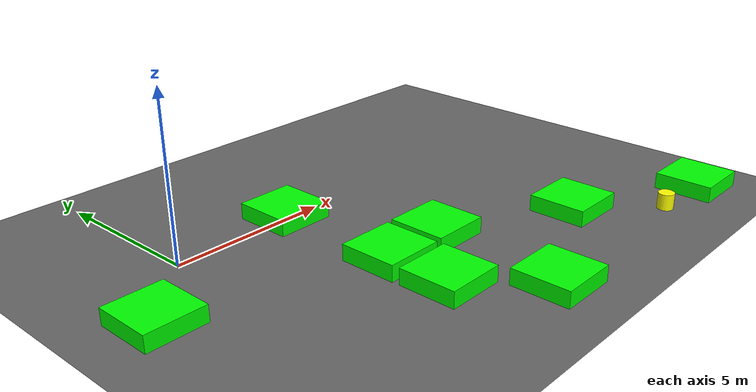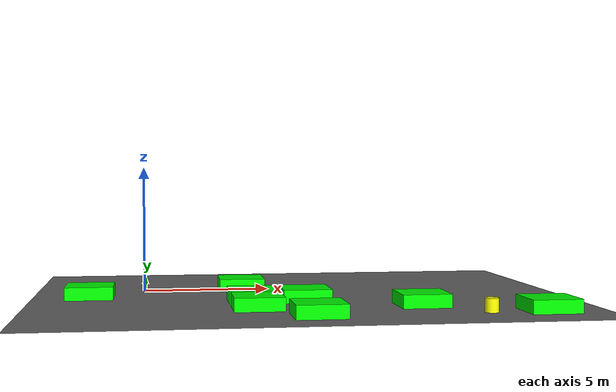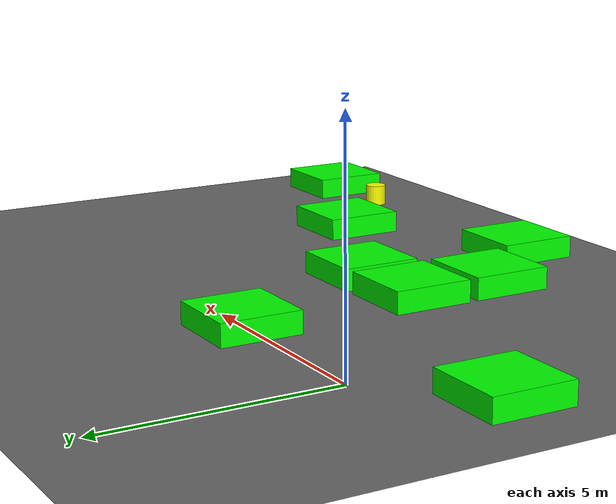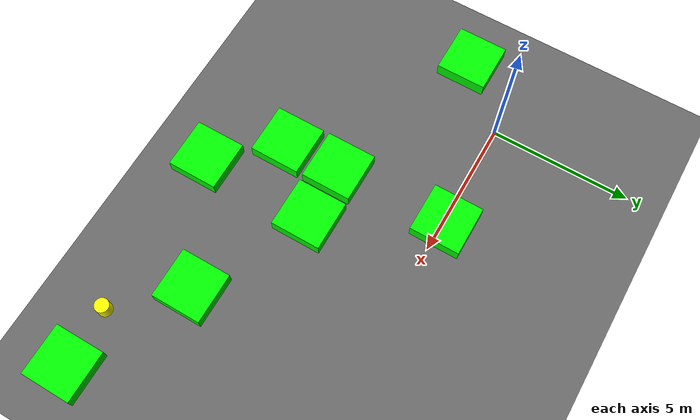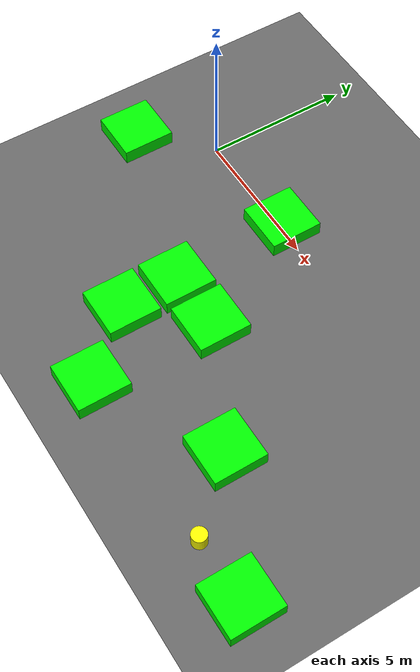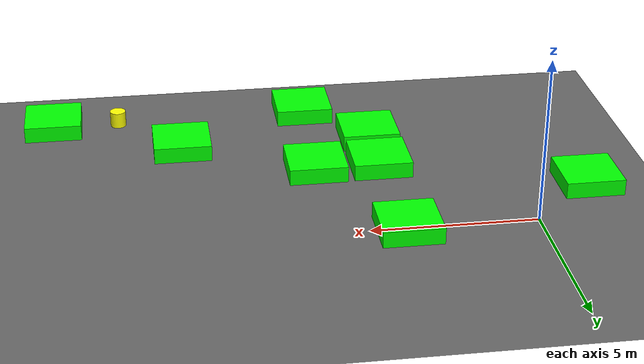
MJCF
<mujoco model="randommix_041_lvl0_standard_obs8_d3long_seed1094">
    <compiler angle="degree" coordinate="local" inertiafromgeom="true"/>
    <option integrator="RK4" timestep="0.01"/>

    <asset>
        <texture builtin="gradient" height="100" rgb1="0.6 0.8 1" rgb2="0 0 0" type="skybox" width="100"/>
        <texture name="floor_texture" type="2d" builtin="checker" width="100" height="100" rgb1="0 0 0" rgb2="0.8 0.8 0.8"/>
        <material name="MatPlane" reflectance="0.5" shininess="1" specular="1" texrepeat="10 10" texture="floor_texture"/>
    </asset>

    <!-- Excluding the contact between the agent and the goal, and the agent and the floor -->
    <contact>
        <exclude body1="agent" body2="goal"/>
        <exclude body1 = "agent" body2 = "floor"/>
    </contact>

    <extension>
        <plugin plugin = "mujoco.pid">
            <instance name = "pid1">
                <config key="kp" value="2"/>
                <config key="ki" value="0"/>
                <config key="kd" value="55"/>
            </instance>
        </plugin>
    </extension>

    <worldbody>
        <light cutoff="100" diffuse="1 1 1" dir="-0 0 -1.3" directional="true" exponent="1" pos="0 0 1.3" specular=".1 .1 .1"/>
        <body name="floor" pos="0 0 0">
            <geom name="floor_geom" type="plane" size="20 20 0.1" material="MatPlane"/>
        </body>

                <body name="goal" pos="0.0000 0.0000 0">
            <geom name="goal_geom" type="plane" size="0.5 0.5 1" pos="0 0 0" rgba="1 0 0 1"/>
        </body>

                <body name="agent" pos="12.0000 -8.0000 0.250">
            <joint name="j1" type="slide" axis ="1 0 0 "/>
            <joint name="j2" type="slide" axis ="0 1 0 "/>
            <geom name="agent_geom" type="cylinder" size="0.25 0.25 0.250" rgba="1 1 0 1"/>
        </body>

        <body name="obstacle1" pos="3.9019 0.0998 0.250">  <geom name="obstacle1_geom" type="box" size="0.9000 0.9000 0.250" rgba="0 1 0 1"/></body>
        <body name="obstacle2" pos="-2.0495 -1.9929 0.250">  <geom name="obstacle2_geom" type="box" size="0.9000 0.9000 0.250" rgba="0 1 0 1"/></body>
        <body name="obstacle3" pos="4.0224 -3.9732 0.250">  <geom name="obstacle3_geom" type="box" size="0.9000 0.9000 0.250" rgba="0 1 0 1"/></body>
        <body name="obstacle4" pos="6.0228 -3.9420 0.250">  <geom name="obstacle4_geom" type="box" size="0.9000 0.9000 0.250" rgba="0 1 0 1"/></body>
        <body name="obstacle5" pos="4.0411 -5.9848 0.250">  <geom name="obstacle5_geom" type="box" size="0.9000 0.9000 0.250" rgba="0 1 0 1"/></body>
        <body name="obstacle6" pos="10.0346 -5.9264 0.250">  <geom name="obstacle6_geom" type="box" size="0.9000 0.9000 0.250" rgba="0 1 0 1"/></body>
        <body name="obstacle7" pos="5.9120 -8.0941 0.250">  <geom name="obstacle7_geom" type="box" size="0.9000 0.9000 0.250" rgba="0 1 0 1"/></body>
        <body name="obstacle8" pos="14.0913 -7.9547 0.250">  <geom name="obstacle8_geom" type="box" size="0.9000 0.9000 0.250" rgba="0 1 0 1"/></body>

    </worldbody>

    <sensor>
<!-- SENSORS -->

        <distance name="dist1" geom1="agent_geom" geom2="obstacle1_geom" cutoff="1.5"/>
        <distance name="dist2" geom1="agent_geom" geom2="obstacle2_geom" cutoff="1.5"/>
        <distance name="dist3" geom1="agent_geom" geom2="obstacle3_geom" cutoff="1.5"/>
        <distance name="dist4" geom1="agent_geom" geom2="obstacle4_geom" cutoff="1.5"/>
        <distance name="dist5" geom1="agent_geom" geom2="obstacle5_geom" cutoff="1.5"/>
        <distance name="dist6" geom1="agent_geom" geom2="obstacle6_geom" cutoff="1.5"/>
        <distance name="dist7" geom1="agent_geom" geom2="obstacle7_geom" cutoff="1.5"/>
        <distance name="dist8" geom1="agent_geom" geom2="obstacle8_geom" cutoff="1.5"/>
</sensor>

    <actuator>
        <plugin joint="j1" plugin="mujoco.pid" instance="pid1" />
        <plugin joint="j2" plugin="mujoco.pid" instance="pid1"/>
    </actuator>
</mujoco>
